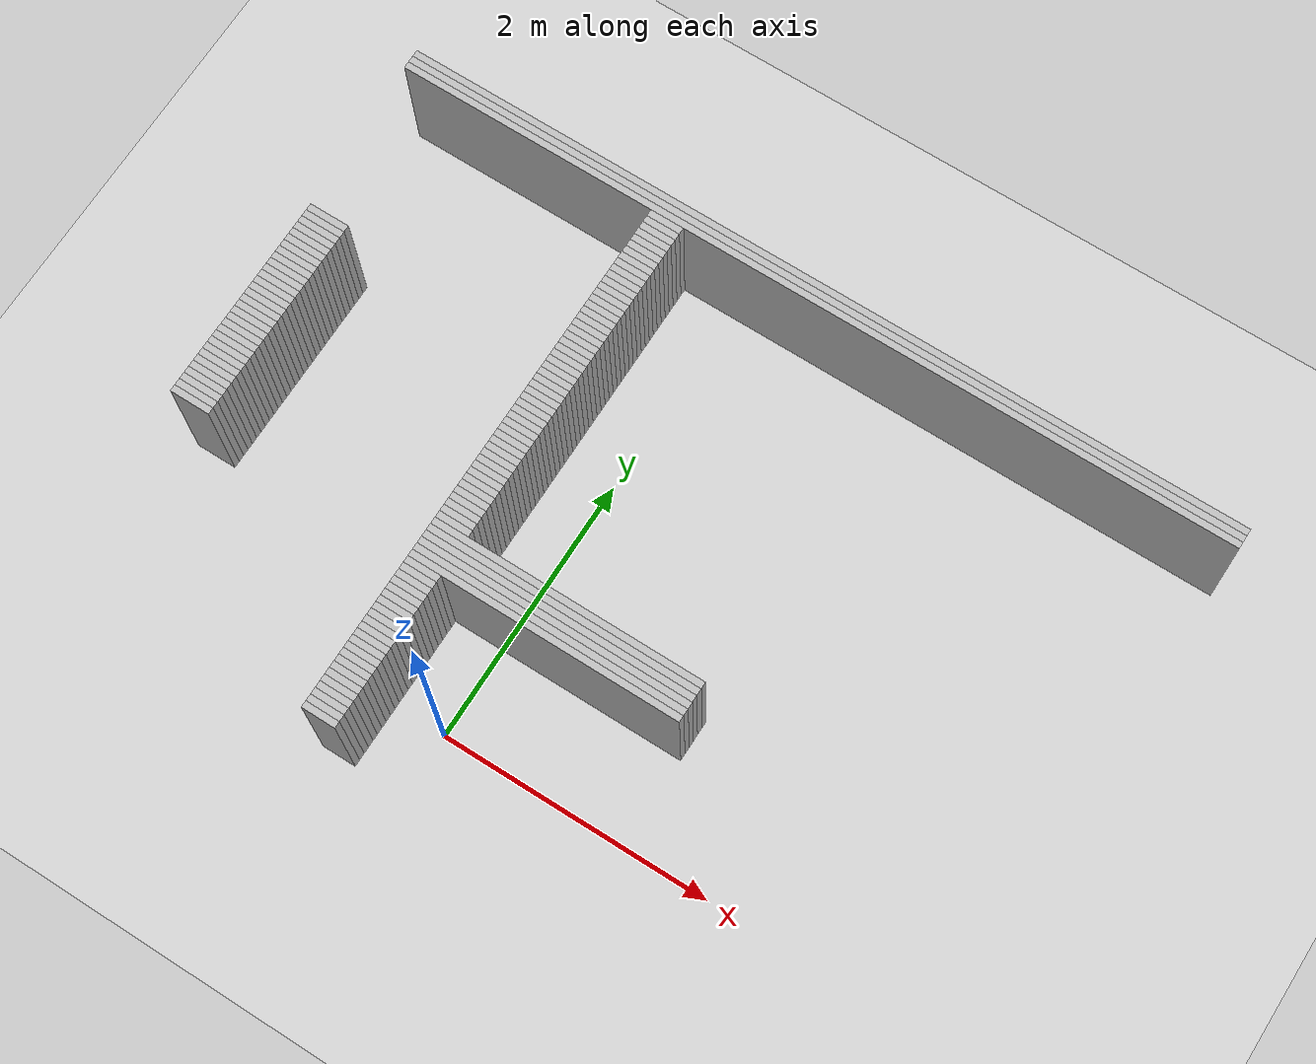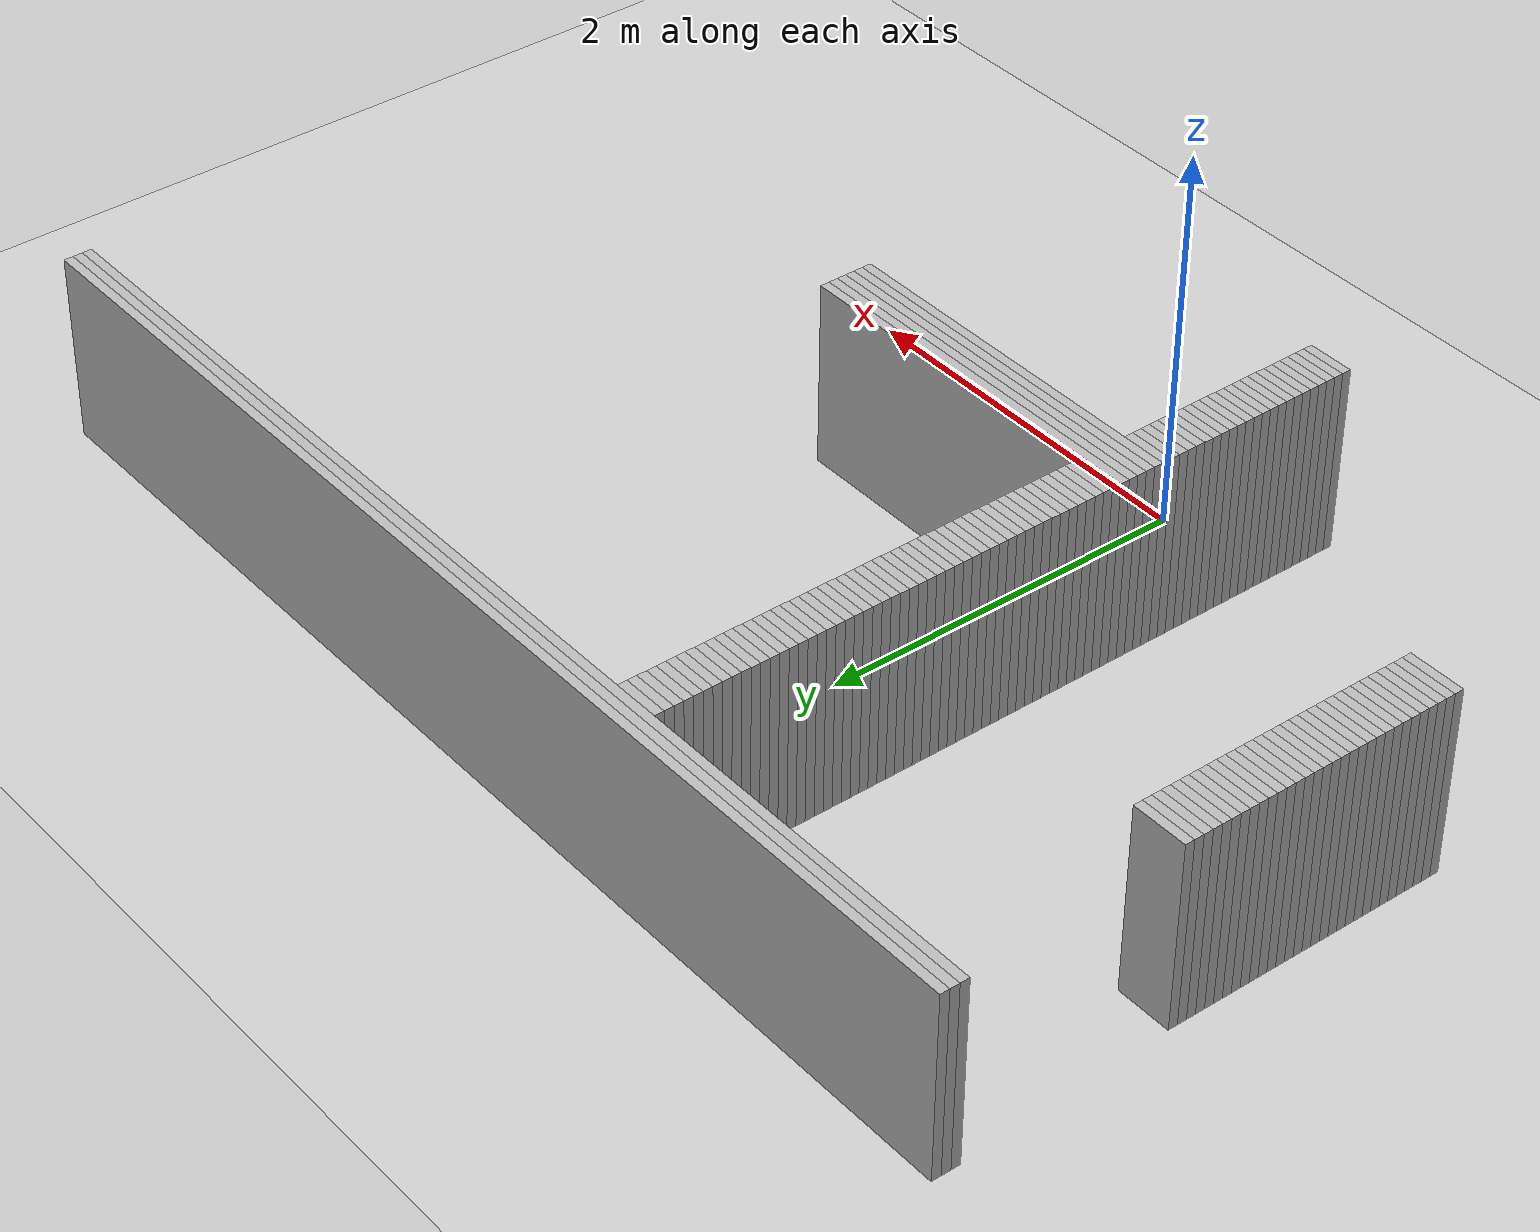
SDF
<sdf version="1.6">
 <world name="maze">
  <include><uri>model://ground_plane</uri></include>
  <include><uri>model://sun</uri></include>
  <model name="wall_24_3">
   <static>true</static>
   <pose>0.5750000000000001 3.6 0.5 0 0 0</pose>
   <link name="link">
    <collision name="collision">
     <geometry><box><size>6.300000000000001 0.05 1.0</size></box></geometry>
    </collision>
    <visual name="visual"><geometry><box><size>6.300000000000001 0.05 1.0</size></box></geometry></visual>
   </link>
  </model>
  <model name="wall_24_4">
   <static>true</static>
   <pose>0.5750000000000001 3.5500000000000003 0.5 0 0 0</pose>
   <link name="link">
    <collision name="collision">
     <geometry><box><size>6.300000000000001 0.05 1.0</size></box></geometry>
    </collision>
    <visual name="visual"><geometry><box><size>6.300000000000001 0.05 1.0</size></box></geometry></visual>
   </link>
  </model>
  <model name="wall_24_5">
   <static>true</static>
   <pose>0.5750000000000001 3.5 0.5 0 0 0</pose>
   <link name="link">
    <collision name="collision">
     <geometry><box><size>6.300000000000001 0.05 1.0</size></box></geometry>
    </collision>
    <visual name="visual"><geometry><box><size>6.300000000000001 0.05 1.0</size></box></geometry></visual>
   </link>
  </model>
  <model name="wall_63_6">
   <static>true</static>
   <pose>-0.5 3.45 0.5 0 0 0</pose>
   <link name="link">
    <collision name="collision"><geometry><box><size>0.25 0.05 1.0</size></box></geometry></collision>
    <visual name="visual"><geometry><box><size>0.25 0.05 1.0</size></box></geometry></visual>
   </link>
  </model>
  <model name="wall_63_7">
   <static>true</static>
   <pose>-0.5 3.4000000000000004 0.5 0 0 0</pose>
   <link name="link">
    <collision name="collision"><geometry><box><size>0.25 0.05 1.0</size></box></geometry></collision>
    <visual name="visual"><geometry><box><size>0.25 0.05 1.0</size></box></geometry></visual>
   </link>
  </model>
  <model name="wall_63_8">
   <static>true</static>
   <pose>-0.5 3.35 0.5 0 0 0</pose>
   <link name="link">
    <collision name="collision"><geometry><box><size>0.25 0.05 1.0</size></box></geometry></collision>
    <visual name="visual"><geometry><box><size>0.25 0.05 1.0</size></box></geometry></visual>
   </link>
  </model>
  <model name="wall_63_9">
   <static>true</static>
   <pose>-0.5 3.3000000000000003 0.5 0 0 0</pose>
   <link name="link">
    <collision name="collision"><geometry><box><size>0.25 0.05 1.0</size></box></geometry></collision>
    <visual name="visual"><geometry><box><size>0.25 0.05 1.0</size></box></geometry></visual>
   </link>
  </model>
  <model name="wall_63_10">
   <static>true</static>
   <pose>-0.5 3.25 0.5 0 0 0</pose>
   <link name="link">
    <collision name="collision"><geometry><box><size>0.25 0.05 1.0</size></box></geometry></collision>
    <visual name="visual"><geometry><box><size>0.25 0.05 1.0</size></box></geometry></visual>
   </link>
  </model>
  <model name="wall_63_11">
   <static>true</static>
   <pose>-0.5 3.2 0.5 0 0 0</pose>
   <link name="link">
    <collision name="collision"><geometry><box><size>0.25 0.05 1.0</size></box></geometry></collision>
    <visual name="visual"><geometry><box><size>0.25 0.05 1.0</size></box></geometry></visual>
   </link>
  </model>
  <model name="wall_63_12">
   <static>true</static>
   <pose>-0.5 3.1500000000000004 0.5 0 0 0</pose>
   <link name="link">
    <collision name="collision"><geometry><box><size>0.25 0.05 1.0</size></box></geometry></collision>
    <visual name="visual"><geometry><box><size>0.25 0.05 1.0</size></box></geometry></visual>
   </link>
  </model>
  <model name="wall_63_13">
   <static>true</static>
   <pose>-0.5 3.1 0.5 0 0 0</pose>
   <link name="link">
    <collision name="collision"><geometry><box><size>0.25 0.05 1.0</size></box></geometry></collision>
    <visual name="visual"><geometry><box><size>0.25 0.05 1.0</size></box></geometry></visual>
   </link>
  </model>
  <model name="wall_63_14">
   <static>true</static>
   <pose>-0.5 3.0500000000000003 0.5 0 0 0</pose>
   <link name="link">
    <collision name="collision"><geometry><box><size>0.25 0.05 1.0</size></box></geometry></collision>
    <visual name="visual"><geometry><box><size>0.25 0.05 1.0</size></box></geometry></visual>
   </link>
  </model>
  <model name="wall_63_15">
   <static>true</static>
   <pose>-0.5 3.0 0.5 0 0 0</pose>
   <link name="link">
    <collision name="collision"><geometry><box><size>0.25 0.05 1.0</size></box></geometry></collision>
    <visual name="visual"><geometry><box><size>0.25 0.05 1.0</size></box></geometry></visual>
   </link>
  </model>
  <model name="wall_63_16">
   <static>true</static>
   <pose>-0.5 2.95 0.5 0 0 0</pose>
   <link name="link">
    <collision name="collision"><geometry><box><size>0.25 0.05 1.0</size></box></geometry></collision>
    <visual name="visual"><geometry><box><size>0.25 0.05 1.0</size></box></geometry></visual>
   </link>
  </model>
  <model name="wall_63_17">
   <static>true</static>
   <pose>-0.5 2.9000000000000004 0.5 0 0 0</pose>
   <link name="link">
    <collision name="collision"><geometry><box><size>0.25 0.05 1.0</size></box></geometry></collision>
    <visual name="visual"><geometry><box><size>0.25 0.05 1.0</size></box></geometry></visual>
   </link>
  </model>
  <model name="wall_63_18">
   <static>true</static>
   <pose>-0.5 2.85 0.5 0 0 0</pose>
   <link name="link">
    <collision name="collision"><geometry><box><size>0.25 0.05 1.0</size></box></geometry></collision>
    <visual name="visual"><geometry><box><size>0.25 0.05 1.0</size></box></geometry></visual>
   </link>
  </model>
  <model name="wall_63_19">
   <static>true</static>
   <pose>-0.5 2.8000000000000003 0.5 0 0 0</pose>
   <link name="link">
    <collision name="collision"><geometry><box><size>0.25 0.05 1.0</size></box></geometry></collision>
    <visual name="visual"><geometry><box><size>0.25 0.05 1.0</size></box></geometry></visual>
   </link>
  </model>
  <model name="wall_63_20">
   <static>true</static>
   <pose>-0.5 2.75 0.5 0 0 0</pose>
   <link name="link">
    <collision name="collision"><geometry><box><size>0.25 0.05 1.0</size></box></geometry></collision>
    <visual name="visual"><geometry><box><size>0.25 0.05 1.0</size></box></geometry></visual>
   </link>
  </model>
  <model name="wall_63_21">
   <static>true</static>
   <pose>-0.5 2.7 0.5 0 0 0</pose>
   <link name="link">
    <collision name="collision"><geometry><box><size>0.25 0.05 1.0</size></box></geometry></collision>
    <visual name="visual"><geometry><box><size>0.25 0.05 1.0</size></box></geometry></visual>
   </link>
  </model>
  <model name="wall_63_22">
   <static>true</static>
   <pose>-0.5 2.6500000000000004 0.5 0 0 0</pose>
   <link name="link">
    <collision name="collision"><geometry><box><size>0.25 0.05 1.0</size></box></geometry></collision>
    <visual name="visual"><geometry><box><size>0.25 0.05 1.0</size></box></geometry></visual>
   </link>
  </model>
  <model name="wall_63_23">
   <static>true</static>
   <pose>-0.5 2.6 0.5 0 0 0</pose>
   <link name="link">
    <collision name="collision"><geometry><box><size>0.25 0.05 1.0</size></box></geometry></collision>
    <visual name="visual"><geometry><box><size>0.25 0.05 1.0</size></box></geometry></visual>
   </link>
  </model>
  <model name="wall_63_24">
   <static>true</static>
   <pose>-0.5 2.5500000000000003 0.5 0 0 0</pose>
   <link name="link">
    <collision name="collision"><geometry><box><size>0.25 0.05 1.0</size></box></geometry></collision>
    <visual name="visual"><geometry><box><size>0.25 0.05 1.0</size></box></geometry></visual>
   </link>
  </model>
  <model name="wall_63_25">
   <static>true</static>
   <pose>-0.5 2.5 0.5 0 0 0</pose>
   <link name="link">
    <collision name="collision"><geometry><box><size>0.25 0.05 1.0</size></box></geometry></collision>
    <visual name="visual"><geometry><box><size>0.25 0.05 1.0</size></box></geometry></visual>
   </link>
  </model>
  <model name="wall_63_26">
   <static>true</static>
   <pose>-0.5 2.45 0.5 0 0 0</pose>
   <link name="link">
    <collision name="collision"><geometry><box><size>0.25 0.05 1.0</size></box></geometry></collision>
    <visual name="visual"><geometry><box><size>0.25 0.05 1.0</size></box></geometry></visual>
   </link>
  </model>
  <model name="wall_63_27">
   <static>true</static>
   <pose>-0.5 2.4000000000000004 0.5 0 0 0</pose>
   <link name="link">
    <collision name="collision"><geometry><box><size>0.25 0.05 1.0</size></box></geometry></collision>
    <visual name="visual"><geometry><box><size>0.25 0.05 1.0</size></box></geometry></visual>
   </link>
  </model>
  <model name="wall_63_28">
   <static>true</static>
   <pose>-0.5 2.35 0.5 0 0 0</pose>
   <link name="link">
    <collision name="collision"><geometry><box><size>0.25 0.05 1.0</size></box></geometry></collision>
    <visual name="visual"><geometry><box><size>0.25 0.05 1.0</size></box></geometry></visual>
   </link>
  </model>
  <model name="wall_25_29">
   <static>true</static>
   <pose>-2.375 2.3000000000000003 0.5 0 0 0</pose>
   <link name="link">
    <collision name="collision">
     <geometry><box><size>0.30000000000000004 0.05 1.0</size></box></geometry>
    </collision>
    <visual name="visual"><geometry><box><size>0.30000000000000004 0.05 1.0</size></box></geometry></visual>
   </link>
  </model>
  <model name="wall_63_29">
   <static>true</static>
   <pose>-0.5 2.3000000000000003 0.5 0 0 0</pose>
   <link name="link">
    <collision name="collision"><geometry><box><size>0.25 0.05 1.0</size></box></geometry></collision>
    <visual name="visual"><geometry><box><size>0.25 0.05 1.0</size></box></geometry></visual>
   </link>
  </model>
  <model name="wall_25_30">
   <static>true</static>
   <pose>-2.375 2.25 0.5 0 0 0</pose>
   <link name="link">
    <collision name="collision">
     <geometry><box><size>0.30000000000000004 0.05 1.0</size></box></geometry>
    </collision>
    <visual name="visual"><geometry><box><size>0.30000000000000004 0.05 1.0</size></box></geometry></visual>
   </link>
  </model>
  <model name="wall_63_30">
   <static>true</static>
   <pose>-0.5 2.25 0.5 0 0 0</pose>
   <link name="link">
    <collision name="collision"><geometry><box><size>0.25 0.05 1.0</size></box></geometry></collision>
    <visual name="visual"><geometry><box><size>0.25 0.05 1.0</size></box></geometry></visual>
   </link>
  </model>
  <model name="wall_25_31">
   <static>true</static>
   <pose>-2.375 2.2 0.5 0 0 0</pose>
   <link name="link">
    <collision name="collision">
     <geometry><box><size>0.30000000000000004 0.05 1.0</size></box></geometry>
    </collision>
    <visual name="visual"><geometry><box><size>0.30000000000000004 0.05 1.0</size></box></geometry></visual>
   </link>
  </model>
  <model name="wall_63_31">
   <static>true</static>
   <pose>-0.5 2.2 0.5 0 0 0</pose>
   <link name="link">
    <collision name="collision"><geometry><box><size>0.25 0.05 1.0</size></box></geometry></collision>
    <visual name="visual"><geometry><box><size>0.25 0.05 1.0</size></box></geometry></visual>
   </link>
  </model>
  <model name="wall_25_32">
   <static>true</static>
   <pose>-2.375 2.15 0.5 0 0 0</pose>
   <link name="link">
    <collision name="collision">
     <geometry><box><size>0.30000000000000004 0.05 1.0</size></box></geometry>
    </collision>
    <visual name="visual"><geometry><box><size>0.30000000000000004 0.05 1.0</size></box></geometry></visual>
   </link>
  </model>
  <model name="wall_63_32">
   <static>true</static>
   <pose>-0.5 2.15 0.5 0 0 0</pose>
   <link name="link">
    <collision name="collision"><geometry><box><size>0.25 0.05 1.0</size></box></geometry></collision>
    <visual name="visual"><geometry><box><size>0.25 0.05 1.0</size></box></geometry></visual>
   </link>
  </model>
  <model name="wall_25_33">
   <static>true</static>
   <pose>-2.375 2.1 0.5 0 0 0</pose>
   <link name="link">
    <collision name="collision">
     <geometry><box><size>0.30000000000000004 0.05 1.0</size></box></geometry>
    </collision>
    <visual name="visual"><geometry><box><size>0.30000000000000004 0.05 1.0</size></box></geometry></visual>
   </link>
  </model>
  <model name="wall_63_33">
   <static>true</static>
   <pose>-0.5 2.1 0.5 0 0 0</pose>
   <link name="link">
    <collision name="collision"><geometry><box><size>0.25 0.05 1.0</size></box></geometry></collision>
    <visual name="visual"><geometry><box><size>0.25 0.05 1.0</size></box></geometry></visual>
   </link>
  </model>
  <model name="wall_25_34">
   <static>true</static>
   <pose>-2.375 2.0500000000000003 0.5 0 0 0</pose>
   <link name="link">
    <collision name="collision">
     <geometry><box><size>0.30000000000000004 0.05 1.0</size></box></geometry>
    </collision>
    <visual name="visual"><geometry><box><size>0.30000000000000004 0.05 1.0</size></box></geometry></visual>
   </link>
  </model>
  <model name="wall_63_34">
   <static>true</static>
   <pose>-0.5 2.0500000000000003 0.5 0 0 0</pose>
   <link name="link">
    <collision name="collision"><geometry><box><size>0.25 0.05 1.0</size></box></geometry></collision>
    <visual name="visual"><geometry><box><size>0.25 0.05 1.0</size></box></geometry></visual>
   </link>
  </model>
  <model name="wall_25_35">
   <static>true</static>
   <pose>-2.375 2.0 0.5 0 0 0</pose>
   <link name="link">
    <collision name="collision">
     <geometry><box><size>0.30000000000000004 0.05 1.0</size></box></geometry>
    </collision>
    <visual name="visual"><geometry><box><size>0.30000000000000004 0.05 1.0</size></box></geometry></visual>
   </link>
  </model>
  <model name="wall_63_35">
   <static>true</static>
   <pose>-0.5 2.0 0.5 0 0 0</pose>
   <link name="link">
    <collision name="collision"><geometry><box><size>0.25 0.05 1.0</size></box></geometry></collision>
    <visual name="visual"><geometry><box><size>0.25 0.05 1.0</size></box></geometry></visual>
   </link>
  </model>
  <model name="wall_25_36">
   <static>true</static>
   <pose>-2.375 1.9500000000000002 0.5 0 0 0</pose>
   <link name="link">
    <collision name="collision">
     <geometry><box><size>0.30000000000000004 0.05 1.0</size></box></geometry>
    </collision>
    <visual name="visual"><geometry><box><size>0.30000000000000004 0.05 1.0</size></box></geometry></visual>
   </link>
  </model>
  <model name="wall_63_36">
   <static>true</static>
   <pose>-0.5 1.9500000000000002 0.5 0 0 0</pose>
   <link name="link">
    <collision name="collision"><geometry><box><size>0.25 0.05 1.0</size></box></geometry></collision>
    <visual name="visual"><geometry><box><size>0.25 0.05 1.0</size></box></geometry></visual>
   </link>
  </model>
  <model name="wall_25_37">
   <static>true</static>
   <pose>-2.375 1.9000000000000001 0.5 0 0 0</pose>
   <link name="link">
    <collision name="collision">
     <geometry><box><size>0.30000000000000004 0.05 1.0</size></box></geometry>
    </collision>
    <visual name="visual"><geometry><box><size>0.30000000000000004 0.05 1.0</size></box></geometry></visual>
   </link>
  </model>
  <model name="wall_63_37">
   <static>true</static>
   <pose>-0.5 1.9000000000000001 0.5 0 0 0</pose>
   <link name="link">
    <collision name="collision"><geometry><box><size>0.25 0.05 1.0</size></box></geometry></collision>
    <visual name="visual"><geometry><box><size>0.25 0.05 1.0</size></box></geometry></visual>
   </link>
  </model>
  <model name="wall_25_38">
   <static>true</static>
   <pose>-2.375 1.85 0.5 0 0 0</pose>
   <link name="link">
    <collision name="collision">
     <geometry><box><size>0.30000000000000004 0.05 1.0</size></box></geometry>
    </collision>
    <visual name="visual"><geometry><box><size>0.30000000000000004 0.05 1.0</size></box></geometry></visual>
   </link>
  </model>
  <model name="wall_63_38">
   <static>true</static>
   <pose>-0.5 1.85 0.5 0 0 0</pose>
   <link name="link">
    <collision name="collision"><geometry><box><size>0.25 0.05 1.0</size></box></geometry></collision>
    <visual name="visual"><geometry><box><size>0.25 0.05 1.0</size></box></geometry></visual>
   </link>
  </model>
  <model name="wall_25_39">
   <static>true</static>
   <pose>-2.375 1.8 0.5 0 0 0</pose>
   <link name="link">
    <collision name="collision">
     <geometry><box><size>0.30000000000000004 0.05 1.0</size></box></geometry>
    </collision>
    <visual name="visual"><geometry><box><size>0.30000000000000004 0.05 1.0</size></box></geometry></visual>
   </link>
  </model>
  <model name="wall_63_39">
   <static>true</static>
   <pose>-0.5 1.8 0.5 0 0 0</pose>
   <link name="link">
    <collision name="collision"><geometry><box><size>0.25 0.05 1.0</size></box></geometry></collision>
    <visual name="visual"><geometry><box><size>0.25 0.05 1.0</size></box></geometry></visual>
   </link>
  </model>
  <model name="wall_25_40">
   <static>true</static>
   <pose>-2.375 1.75 0.5 0 0 0</pose>
   <link name="link">
    <collision name="collision">
     <geometry><box><size>0.30000000000000004 0.05 1.0</size></box></geometry>
    </collision>
    <visual name="visual"><geometry><box><size>0.30000000000000004 0.05 1.0</size></box></geometry></visual>
   </link>
  </model>
  <model name="wall_63_40">
   <static>true</static>
   <pose>-0.5 1.75 0.5 0 0 0</pose>
   <link name="link">
    <collision name="collision"><geometry><box><size>0.25 0.05 1.0</size></box></geometry></collision>
    <visual name="visual"><geometry><box><size>0.25 0.05 1.0</size></box></geometry></visual>
   </link>
  </model>
  <model name="wall_25_41">
   <static>true</static>
   <pose>-2.375 1.7000000000000002 0.5 0 0 0</pose>
   <link name="link">
    <collision name="collision">
     <geometry><box><size>0.30000000000000004 0.05 1.0</size></box></geometry>
    </collision>
    <visual name="visual"><geometry><box><size>0.30000000000000004 0.05 1.0</size></box></geometry></visual>
   </link>
  </model>
  <model name="wall_63_41">
   <static>true</static>
   <pose>-0.5 1.7000000000000002 0.5 0 0 0</pose>
   <link name="link">
    <collision name="collision"><geometry><box><size>0.25 0.05 1.0</size></box></geometry></collision>
    <visual name="visual"><geometry><box><size>0.25 0.05 1.0</size></box></geometry></visual>
   </link>
  </model>
  <model name="wall_25_42">
   <static>true</static>
   <pose>-2.375 1.6500000000000001 0.5 0 0 0</pose>
   <link name="link">
    <collision name="collision">
     <geometry><box><size>0.30000000000000004 0.05 1.0</size></box></geometry>
    </collision>
    <visual name="visual"><geometry><box><size>0.30000000000000004 0.05 1.0</size></box></geometry></visual>
   </link>
  </model>
  <model name="wall_63_42">
   <static>true</static>
   <pose>-0.5 1.6500000000000001 0.5 0 0 0</pose>
   <link name="link">
    <collision name="collision"><geometry><box><size>0.25 0.05 1.0</size></box></geometry></collision>
    <visual name="visual"><geometry><box><size>0.25 0.05 1.0</size></box></geometry></visual>
   </link>
  </model>
  <model name="wall_25_43">
   <static>true</static>
   <pose>-2.375 1.6 0.5 0 0 0</pose>
   <link name="link">
    <collision name="collision">
     <geometry><box><size>0.30000000000000004 0.05 1.0</size></box></geometry>
    </collision>
    <visual name="visual"><geometry><box><size>0.30000000000000004 0.05 1.0</size></box></geometry></visual>
   </link>
  </model>
  <model name="wall_63_43">
   <static>true</static>
   <pose>-0.5 1.6 0.5 0 0 0</pose>
   <link name="link">
    <collision name="collision"><geometry><box><size>0.25 0.05 1.0</size></box></geometry></collision>
    <visual name="visual"><geometry><box><size>0.25 0.05 1.0</size></box></geometry></visual>
   </link>
  </model>
  <model name="wall_25_44">
   <static>true</static>
   <pose>-2.375 1.55 0.5 0 0 0</pose>
   <link name="link">
    <collision name="collision">
     <geometry><box><size>0.30000000000000004 0.05 1.0</size></box></geometry>
    </collision>
    <visual name="visual"><geometry><box><size>0.30000000000000004 0.05 1.0</size></box></geometry></visual>
   </link>
  </model>
  <model name="wall_63_44">
   <static>true</static>
   <pose>-0.5 1.55 0.5 0 0 0</pose>
   <link name="link">
    <collision name="collision"><geometry><box><size>0.25 0.05 1.0</size></box></geometry></collision>
    <visual name="visual"><geometry><box><size>0.25 0.05 1.0</size></box></geometry></visual>
   </link>
  </model>
  <model name="wall_25_45">
   <static>true</static>
   <pose>-2.375 1.5 0.5 0 0 0</pose>
   <link name="link">
    <collision name="collision">
     <geometry><box><size>0.30000000000000004 0.05 1.0</size></box></geometry>
    </collision>
    <visual name="visual"><geometry><box><size>0.30000000000000004 0.05 1.0</size></box></geometry></visual>
   </link>
  </model>
  <model name="wall_63_45">
   <static>true</static>
   <pose>-0.5 1.5 0.5 0 0 0</pose>
   <link name="link">
    <collision name="collision"><geometry><box><size>0.25 0.05 1.0</size></box></geometry></collision>
    <visual name="visual"><geometry><box><size>0.25 0.05 1.0</size></box></geometry></visual>
   </link>
  </model>
  <model name="wall_25_46">
   <static>true</static>
   <pose>-2.375 1.4500000000000002 0.5 0 0 0</pose>
   <link name="link">
    <collision name="collision">
     <geometry><box><size>0.30000000000000004 0.05 1.0</size></box></geometry>
    </collision>
    <visual name="visual"><geometry><box><size>0.30000000000000004 0.05 1.0</size></box></geometry></visual>
   </link>
  </model>
  <model name="wall_63_46">
   <static>true</static>
   <pose>-0.5 1.4500000000000002 0.5 0 0 0</pose>
   <link name="link">
    <collision name="collision"><geometry><box><size>0.25 0.05 1.0</size></box></geometry></collision>
    <visual name="visual"><geometry><box><size>0.25 0.05 1.0</size></box></geometry></visual>
   </link>
  </model>
  <model name="wall_25_47">
   <static>true</static>
   <pose>-2.375 1.4000000000000001 0.5 0 0 0</pose>
   <link name="link">
    <collision name="collision">
     <geometry><box><size>0.30000000000000004 0.05 1.0</size></box></geometry>
    </collision>
    <visual name="visual"><geometry><box><size>0.30000000000000004 0.05 1.0</size></box></geometry></visual>
   </link>
  </model>
  <model name="wall_63_47">
   <static>true</static>
   <pose>-0.5 1.4000000000000001 0.5 0 0 0</pose>
   <link name="link">
    <collision name="collision"><geometry><box><size>0.25 0.05 1.0</size></box></geometry></collision>
    <visual name="visual"><geometry><box><size>0.25 0.05 1.0</size></box></geometry></visual>
   </link>
  </model>
  <model name="wall_25_48">
   <static>true</static>
   <pose>-2.375 1.35 0.5 0 0 0</pose>
   <link name="link">
    <collision name="collision">
     <geometry><box><size>0.30000000000000004 0.05 1.0</size></box></geometry>
    </collision>
    <visual name="visual"><geometry><box><size>0.30000000000000004 0.05 1.0</size></box></geometry></visual>
   </link>
  </model>
  <model name="wall_63_48">
   <static>true</static>
   <pose>-0.5 1.35 0.5 0 0 0</pose>
   <link name="link">
    <collision name="collision"><geometry><box><size>0.25 0.05 1.0</size></box></geometry></collision>
    <visual name="visual"><geometry><box><size>0.25 0.05 1.0</size></box></geometry></visual>
   </link>
  </model>
  <model name="wall_25_49">
   <static>true</static>
   <pose>-2.375 1.3 0.5 0 0 0</pose>
   <link name="link">
    <collision name="collision">
     <geometry><box><size>0.30000000000000004 0.05 1.0</size></box></geometry>
    </collision>
    <visual name="visual"><geometry><box><size>0.30000000000000004 0.05 1.0</size></box></geometry></visual>
   </link>
  </model>
  <model name="wall_63_49">
   <static>true</static>
   <pose>-0.5 1.3 0.5 0 0 0</pose>
   <link name="link">
    <collision name="collision"><geometry><box><size>0.25 0.05 1.0</size></box></geometry></collision>
    <visual name="visual"><geometry><box><size>0.25 0.05 1.0</size></box></geometry></visual>
   </link>
  </model>
  <model name="wall_25_50">
   <static>true</static>
   <pose>-2.375 1.25 0.5 0 0 0</pose>
   <link name="link">
    <collision name="collision">
     <geometry><box><size>0.30000000000000004 0.05 1.0</size></box></geometry>
    </collision>
    <visual name="visual"><geometry><box><size>0.30000000000000004 0.05 1.0</size></box></geometry></visual>
   </link>
  </model>
  <model name="wall_63_50">
   <static>true</static>
   <pose>-0.5 1.25 0.5 0 0 0</pose>
   <link name="link">
    <collision name="collision"><geometry><box><size>0.25 0.05 1.0</size></box></geometry></collision>
    <visual name="visual"><geometry><box><size>0.25 0.05 1.0</size></box></geometry></visual>
   </link>
  </model>
  <model name="wall_25_51">
   <static>true</static>
   <pose>-2.375 1.2000000000000002 0.5 0 0 0</pose>
   <link name="link">
    <collision name="collision">
     <geometry><box><size>0.30000000000000004 0.05 1.0</size></box></geometry>
    </collision>
    <visual name="visual"><geometry><box><size>0.30000000000000004 0.05 1.0</size></box></geometry></visual>
   </link>
  </model>
  <model name="wall_63_51">
   <static>true</static>
   <pose>-0.5 1.2000000000000002 0.5 0 0 0</pose>
   <link name="link">
    <collision name="collision"><geometry><box><size>0.25 0.05 1.0</size></box></geometry></collision>
    <visual name="visual"><geometry><box><size>0.25 0.05 1.0</size></box></geometry></visual>
   </link>
  </model>
  <model name="wall_25_52">
   <static>true</static>
   <pose>-2.375 1.1500000000000001 0.5 0 0 0</pose>
   <link name="link">
    <collision name="collision">
     <geometry><box><size>0.30000000000000004 0.05 1.0</size></box></geometry>
    </collision>
    <visual name="visual"><geometry><box><size>0.30000000000000004 0.05 1.0</size></box></geometry></visual>
   </link>
  </model>
  <model name="wall_63_52">
   <static>true</static>
   <pose>-0.5 1.1500000000000001 0.5 0 0 0</pose>
   <link name="link">
    <collision name="collision"><geometry><box><size>0.25 0.05 1.0</size></box></geometry></collision>
    <visual name="visual"><geometry><box><size>0.25 0.05 1.0</size></box></geometry></visual>
   </link>
  </model>
  <model name="wall_25_53">
   <static>true</static>
   <pose>-2.375 1.1 0.5 0 0 0</pose>
   <link name="link">
    <collision name="collision">
     <geometry><box><size>0.30000000000000004 0.05 1.0</size></box></geometry>
    </collision>
    <visual name="visual"><geometry><box><size>0.30000000000000004 0.05 1.0</size></box></geometry></visual>
   </link>
  </model>
  <model name="wall_63_53">
   <static>true</static>
   <pose>-0.5 1.1 0.5 0 0 0</pose>
   <link name="link">
    <collision name="collision"><geometry><box><size>0.25 0.05 1.0</size></box></geometry></collision>
    <visual name="visual"><geometry><box><size>0.25 0.05 1.0</size></box></geometry></visual>
   </link>
  </model>
  <model name="wall_25_54">
   <static>true</static>
   <pose>-2.375 1.05 0.5 0 0 0</pose>
   <link name="link">
    <collision name="collision">
     <geometry><box><size>0.30000000000000004 0.05 1.0</size></box></geometry>
    </collision>
    <visual name="visual"><geometry><box><size>0.30000000000000004 0.05 1.0</size></box></geometry></visual>
   </link>
  </model>
  <model name="wall_63_54">
   <static>true</static>
   <pose>-0.5 1.05 0.5 0 0 0</pose>
   <link name="link">
    <collision name="collision"><geometry><box><size>0.25 0.05 1.0</size></box></geometry></collision>
    <visual name="visual"><geometry><box><size>0.25 0.05 1.0</size></box></geometry></visual>
   </link>
  </model>
  <model name="wall_25_55">
   <static>true</static>
   <pose>-2.375 1.0 0.5 0 0 0</pose>
   <link name="link">
    <collision name="collision">
     <geometry><box><size>0.30000000000000004 0.05 1.0</size></box></geometry>
    </collision>
    <visual name="visual"><geometry><box><size>0.30000000000000004 0.05 1.0</size></box></geometry></visual>
   </link>
  </model>
  <model name="wall_63_55">
   <static>true</static>
   <pose>-0.5 1.0 0.5 0 0 0</pose>
   <link name="link">
    <collision name="collision"><geometry><box><size>0.25 0.05 1.0</size></box></geometry></collision>
    <visual name="visual"><geometry><box><size>0.25 0.05 1.0</size></box></geometry></visual>
   </link>
  </model>
  <model name="wall_25_56">
   <static>true</static>
   <pose>-2.375 0.9500000000000001 0.5 0 0 0</pose>
   <link name="link">
    <collision name="collision">
     <geometry><box><size>0.30000000000000004 0.05 1.0</size></box></geometry>
    </collision>
    <visual name="visual"><geometry><box><size>0.30000000000000004 0.05 1.0</size></box></geometry></visual>
   </link>
  </model>
  <model name="wall_63_56">
   <static>true</static>
   <pose>0.375 0.9500000000000001 0.5 0 0 0</pose>
   <link name="link">
    <collision name="collision"><geometry><box><size>2.0 0.05 1.0</size></box></geometry></collision>
    <visual name="visual"><geometry><box><size>2.0 0.05 1.0</size></box></geometry></visual>
   </link>
  </model>
  <model name="wall_25_57">
   <static>true</static>
   <pose>-2.375 0.9 0.5 0 0 0</pose>
   <link name="link">
    <collision name="collision">
     <geometry><box><size>0.30000000000000004 0.05 1.0</size></box></geometry>
    </collision>
    <visual name="visual"><geometry><box><size>0.30000000000000004 0.05 1.0</size></box></geometry></visual>
   </link>
  </model>
  <model name="wall_63_57">
   <static>true</static>
   <pose>0.375 0.9 0.5 0 0 0</pose>
   <link name="link">
    <collision name="collision"><geometry><box><size>2.0 0.05 1.0</size></box></geometry></collision>
    <visual name="visual"><geometry><box><size>2.0 0.05 1.0</size></box></geometry></visual>
   </link>
  </model>
  <model name="wall_25_58">
   <static>true</static>
   <pose>-2.375 0.8500000000000001 0.5 0 0 0</pose>
   <link name="link">
    <collision name="collision">
     <geometry><box><size>0.30000000000000004 0.05 1.0</size></box></geometry>
    </collision>
    <visual name="visual"><geometry><box><size>0.30000000000000004 0.05 1.0</size></box></geometry></visual>
   </link>
  </model>
  <model name="wall_63_58">
   <static>true</static>
   <pose>0.375 0.8500000000000001 0.5 0 0 0</pose>
   <link name="link">
    <collision name="collision"><geometry><box><size>2.0 0.05 1.0</size></box></geometry></collision>
    <visual name="visual"><geometry><box><size>2.0 0.05 1.0</size></box></geometry></visual>
   </link>
  </model>
  <model name="wall_25_59">
   <static>true</static>
   <pose>-2.375 0.8 0.5 0 0 0</pose>
   <link name="link">
    <collision name="collision">
     <geometry><box><size>0.30000000000000004 0.05 1.0</size></box></geometry>
    </collision>
    <visual name="visual"><geometry><box><size>0.30000000000000004 0.05 1.0</size></box></geometry></visual>
   </link>
  </model>
  <model name="wall_63_59">
   <static>true</static>
   <pose>0.375 0.8 0.5 0 0 0</pose>
   <link name="link">
    <collision name="collision"><geometry><box><size>2.0 0.05 1.0</size></box></geometry></collision>
    <visual name="visual"><geometry><box><size>2.0 0.05 1.0</size></box></geometry></visual>
   </link>
  </model>
  <model name="wall_63_60">
   <static>true</static>
   <pose>0.375 0.75 0.5 0 0 0</pose>
   <link name="link">
    <collision name="collision"><geometry><box><size>2.0 0.05 1.0</size></box></geometry></collision>
    <visual name="visual"><geometry><box><size>2.0 0.05 1.0</size></box></geometry></visual>
   </link>
  </model>
  <model name="wall_63_61">
   <static>true</static>
   <pose>0.375 0.7000000000000001 0.5 0 0 0</pose>
   <link name="link">
    <collision name="collision"><geometry><box><size>2.0 0.05 1.0</size></box></geometry></collision>
    <visual name="visual"><geometry><box><size>2.0 0.05 1.0</size></box></geometry></visual>
   </link>
  </model>
  <model name="wall_63_62">
   <static>true</static>
   <pose>-0.5 0.65 0.5 0 0 0</pose>
   <link name="link">
    <collision name="collision"><geometry><box><size>0.25 0.05 1.0</size></box></geometry></collision>
    <visual name="visual"><geometry><box><size>0.25 0.05 1.0</size></box></geometry></visual>
   </link>
  </model>
  <model name="wall_63_63">
   <static>true</static>
   <pose>-0.5 0.6000000000000001 0.5 0 0 0</pose>
   <link name="link">
    <collision name="collision"><geometry><box><size>0.25 0.05 1.0</size></box></geometry></collision>
    <visual name="visual"><geometry><box><size>0.25 0.05 1.0</size></box></geometry></visual>
   </link>
  </model>
  <model name="wall_63_64">
   <static>true</static>
   <pose>-0.5 0.55 0.5 0 0 0</pose>
   <link name="link">
    <collision name="collision"><geometry><box><size>0.25 0.05 1.0</size></box></geometry></collision>
    <visual name="visual"><geometry><box><size>0.25 0.05 1.0</size></box></geometry></visual>
   </link>
  </model>
  <model name="wall_63_65">
   <static>true</static>
   <pose>-0.5 0.5 0.5 0 0 0</pose>
   <link name="link">
    <collision name="collision"><geometry><box><size>0.25 0.05 1.0</size></box></geometry></collision>
    <visual name="visual"><geometry><box><size>0.25 0.05 1.0</size></box></geometry></visual>
   </link>
  </model>
  <model name="wall_63_66">
   <static>true</static>
   <pose>-0.5 0.45 0.5 0 0 0</pose>
   <link name="link">
    <collision name="collision"><geometry><box><size>0.25 0.05 1.0</size></box></geometry></collision>
    <visual name="visual"><geometry><box><size>0.25 0.05 1.0</size></box></geometry></visual>
   </link>
  </model>
  <model name="wall_63_67">
   <static>true</static>
   <pose>-0.5 0.4 0.5 0 0 0</pose>
   <link name="link">
    <collision name="collision"><geometry><box><size>0.25 0.05 1.0</size></box></geometry></collision>
    <visual name="visual"><geometry><box><size>0.25 0.05 1.0</size></box></geometry></visual>
   </link>
  </model>
  <model name="wall_63_68">
   <static>true</static>
   <pose>-0.5 0.35000000000000003 0.5 0 0 0</pose>
   <link name="link">
    <collision name="collision"><geometry><box><size>0.25 0.05 1.0</size></box></geometry></collision>
    <visual name="visual"><geometry><box><size>0.25 0.05 1.0</size></box></geometry></visual>
   </link>
  </model>
  <model name="wall_63_69">
   <static>true</static>
   <pose>-0.5 0.30000000000000004 0.5 0 0 0</pose>
   <link name="link">
    <collision name="collision"><geometry><box><size>0.25 0.05 1.0</size></box></geometry></collision>
    <visual name="visual"><geometry><box><size>0.25 0.05 1.0</size></box></geometry></visual>
   </link>
  </model>
  <model name="wall_63_70">
   <static>true</static>
   <pose>-0.5 0.25 0.5 0 0 0</pose>
   <link name="link">
    <collision name="collision"><geometry><box><size>0.25 0.05 1.0</size></box></geometry></collision>
    <visual name="visual"><geometry><box><size>0.25 0.05 1.0</size></box></geometry></visual>
   </link>
  </model>
  <model name="wall_63_71">
   <static>true</static>
   <pose>-0.5 0.2 0.5 0 0 0</pose>
   <link name="link">
    <collision name="collision"><geometry><box><size>0.25 0.05 1.0</size></box></geometry></collision>
    <visual name="visual"><geometry><box><size>0.25 0.05 1.0</size></box></geometry></visual>
   </link>
  </model>
  <model name="wall_63_72">
   <static>true</static>
   <pose>-0.5 0.15000000000000002 0.5 0 0 0</pose>
   <link name="link">
    <collision name="collision"><geometry><box><size>0.25 0.05 1.0</size></box></geometry></collision>
    <visual name="visual"><geometry><box><size>0.25 0.05 1.0</size></box></geometry></visual>
   </link>
  </model>
  <model name="wall_63_73">
   <static>true</static>
   <pose>-0.5 0.1 0.5 0 0 0</pose>
   <link name="link">
    <collision name="collision"><geometry><box><size>0.25 0.05 1.0</size></box></geometry></collision>
    <visual name="visual"><geometry><box><size>0.25 0.05 1.0</size></box></geometry></visual>
   </link>
  </model>
  <model name="wall_63_74">
   <static>true</static>
   <pose>-0.5 0.05 0.5 0 0 0</pose>
   <link name="link">
    <collision name="collision"><geometry><box><size>0.25 0.05 1.0</size></box></geometry></collision>
    <visual name="visual"><geometry><box><size>0.25 0.05 1.0</size></box></geometry></visual>
   </link>
  </model>
  <model name="wall_63_75">
   <static>true</static>
   <pose>-0.5 0.0 0.5 0 0 0</pose>
   <link name="link">
    <collision name="collision"><geometry><box><size>0.25 0.05 1.0</size></box></geometry></collision>
    <visual name="visual"><geometry><box><size>0.25 0.05 1.0</size></box></geometry></visual>
   </link>
  </model>
  <model name="wall_63_76">
   <static>true</static>
   <pose>-0.5 -0.05 0.5 0 0 0</pose>
   <link name="link">
    <collision name="collision"><geometry><box><size>0.25 0.05 1.0</size></box></geometry></collision>
    <visual name="visual"><geometry><box><size>0.25 0.05 1.0</size></box></geometry></visual>
   </link>
  </model>
  <model name="wall_63_77">
   <static>true</static>
   <pose>-0.5 -0.1 0.5 0 0 0</pose>
   <link name="link">
    <collision name="collision"><geometry><box><size>0.25 0.05 1.0</size></box></geometry></collision>
    <visual name="visual"><geometry><box><size>0.25 0.05 1.0</size></box></geometry></visual>
   </link>
  </model>
  <model name="wall_63_78">
   <static>true</static>
   <pose>-0.5 -0.15000000000000002 0.5 0 0 0</pose>
   <link name="link">
    <collision name="collision"><geometry><box><size>0.25 0.05 1.0</size></box></geometry></collision>
    <visual name="visual"><geometry><box><size>0.25 0.05 1.0</size></box></geometry></visual>
   </link>
  </model>
  <model name="wall_63_79">
   <static>true</static>
   <pose>-0.5 -0.2 0.5 0 0 0</pose>
   <link name="link">
    <collision name="collision"><geometry><box><size>0.25 0.05 1.0</size></box></geometry></collision>
    <visual name="visual"><geometry><box><size>0.25 0.05 1.0</size></box></geometry></visual>
   </link>
  </model>
  <model name="wall_63_80">
   <static>true</static>
   <pose>-0.5 -0.25 0.5 0 0 0</pose>
   <link name="link">
    <collision name="collision"><geometry><box><size>0.25 0.05 1.0</size></box></geometry></collision>
    <visual name="visual"><geometry><box><size>0.25 0.05 1.0</size></box></geometry></visual>
   </link>
  </model>
  <model name="wall_63_81">
   <static>true</static>
   <pose>-0.5 -0.30000000000000004 0.5 0 0 0</pose>
   <link name="link">
    <collision name="collision"><geometry><box><size>0.25 0.05 1.0</size></box></geometry></collision>
    <visual name="visual"><geometry><box><size>0.25 0.05 1.0</size></box></geometry></visual>
   </link>
  </model>
  <model name="wall_63_82">
   <static>true</static>
   <pose>-0.5 -0.35000000000000003 0.5 0 0 0</pose>
   <link name="link">
    <collision name="collision"><geometry><box><size>0.25 0.05 1.0</size></box></geometry></collision>
    <visual name="visual"><geometry><box><size>0.25 0.05 1.0</size></box></geometry></visual>
   </link>
  </model>
  <model name="wall_63_83">
   <static>true</static>
   <pose>-0.5 -0.4 0.5 0 0 0</pose>
   <link name="link">
    <collision name="collision"><geometry><box><size>0.25 0.05 1.0</size></box></geometry></collision>
    <visual name="visual"><geometry><box><size>0.25 0.05 1.0</size></box></geometry></visual>
   </link>
  </model>
  <model name="wall_63_84">
   <static>true</static>
   <pose>-0.5 -0.45 0.5 0 0 0</pose>
   <link name="link">
    <collision name="collision"><geometry><box><size>0.25 0.05 1.0</size></box></geometry></collision>
    <visual name="visual"><geometry><box><size>0.25 0.05 1.0</size></box></geometry></visual>
   </link>
  </model>
 </world>
</sdf>
